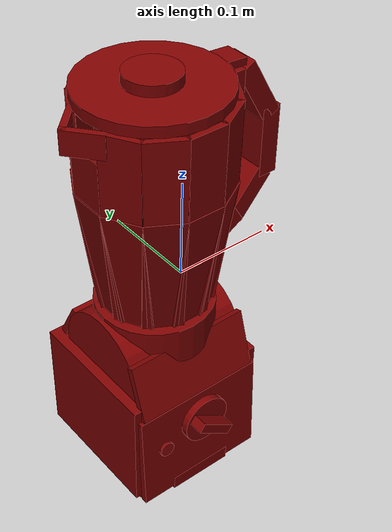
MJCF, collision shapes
<?xml version='1.0' encoding='UTF-8'?>
<mujoco model="model">
  <option timestep="0.002" gravity="0.0 0.0 -9.81"/>
  <compiler angle="radian"/>
  <asset>
    <mesh file="visuals/Blade001.obj" name="Blade001_vis"/>
    <mesh file="visuals/Body001.obj" name="Body001_vis"/>
    <mesh file="visuals/Button001.obj" name="Button001_vis"/>
    <mesh file="visuals/Jug001.obj" name="Jug001_vis"/>
    <mesh file="visuals/Jug001_Clear.obj" name="Jug001_Clear_vis"/>
    <mesh file="visuals/Konb001.obj" name="Konb001_vis"/>
    <mesh file="visuals/Lid001.obj" name="Lid001_vis"/>
    <texture file="visuals/T_BC001.png" name="Body001_material" type="2d"/>
    <material name="Body001_material" rgba="1 1 1 1.0" texture="Body001_material" shininess="0.4472135901451111" specular="0.3103448502657381"/>
    <texture file="visuals/T_BC001.png" name="Button001_material" type="2d"/>
    <material name="Button001_material" rgba="1 1 1 1.0" texture="Button001_material" shininess="0.4472135901451111" specular="0.3103448502657381"/>
    <texture file="visuals/T_BC001.png" name="Jug001_material" type="2d"/>
    <material name="Jug001_material" rgba="1 1 1 1.0" texture="Jug001_material" shininess="0.4472135901451111" specular="0.3103448502657381"/>
    <texture file="visuals/T_BC001.png" name="Blade001_material" type="2d"/>
    <material name="Blade001_material" rgba="1 1 1 1.0" texture="Blade001_material" shininess="0.4472135901451111" specular="0.3103448502657381"/>
    <texture file="visuals/T_BC001.png" name="Jug001_Clear_material" type="2d"/>
    <material name="Jug001_Clear_material" rgba="1 1 1 0.75" texture="Jug001_Clear_material" shininess="0.4472135901451111" specular="0.3103448502657381"/>
    <texture file="visuals/T_BC001.png" name="Lid001_material" type="2d"/>
    <material name="Lid001_material" rgba="1 1 1 1.0" texture="Lid001_material" shininess="0.4472135901451111" specular="0.3103448502657381"/>
    <texture file="visuals/T_BC001.png" name="Konb001_material" type="2d"/>
    <material name="Konb001_material" rgba="1 1 1 1.0" texture="Konb001_material" shininess="0.4472135901451111" specular="0.3103448502657381"/>
  </asset>
  <default>
    <default class="visual">
      <geom conaffinity="0" contype="0" group="1" type="mesh"/>
    </default>
    <default class="collision">
      <geom group="0" rgba="0.5 0 0 0.5"/>
    </default>
    <default class="spawn">
      <geom group="0" rgba="1 1 1 0.5" contype="0" conaffinity="0"/>
      <site group="0" rgba="1 1 1 0.5"/>
    </default>
    <default class="region">
      <geom group="1" conaffinity="0" contype="0" rgba="0 1 0 0"/>
    </default>
  </default>
  <worldbody>
    <body>
      <body name="object">
        <geom mesh="Body001_vis" type="mesh" solimp="0.998 0.998 0.001" solref="0.001 1" friction="0.95 0.3 0.1" class="visual" material="Body001_material"/>
        <geom class="collision" type="box" pos="-0.02370600774884224 0.01575588434934616 -0.14391756057739258" size="0.0726303681731224 0.06995470076799393 0.05990836024284363" quat="1.0 0.0 0.0 0.0" density="1000.0"/>
        <geom class="collision" type="box" pos="-0.02370600774884224 0.010671110823750496 -0.20127084851264954" size="0.03310617431998253 0.07492336630821228 0.0074357446283102036" quat="1.0 0.0 0.0 0.0" density="1000.0"/>
        <geom class="collision" type="cylinder" pos="-0.023498959839344025 0.010333314538002014 -0.0399225689470768" size="0.05790601298213005 0.02009253390133381" quat="1.0 0.0 0.0 0.0" density="1000.0"/>
        <geom class="collision" type="cylinder" pos="-0.023498957976698875 0.011205630376935005 -0.07904822379350662" size="0.05638286471366882 0.062419041991233826" quat="0.70710688829422 -4.750302551315144e-08 0.7071066498756409 4.750301130229673e-08" density="1000.0"/>
        <geom class="collision" type="cylinder" pos="-0.07721934467554092 -0.04520033672451973 -0.19629321992397308" size="0.013792860321700573 0.010646238923072815" quat="1.0 0.0 0.0 0.0" density="1000.0"/>
        <geom class="collision" type="cylinder" pos="-0.07721934467554092 0.06782449781894684 -0.19629321992397308" size="0.013792860321700573 0.010646238923072815" quat="1.0 0.0 0.0 0.0" density="1000.0"/>
        <geom class="collision" type="cylinder" pos="0.029445447027683258 -0.04520033672451973 -0.19629321992397308" size="0.013792860321700573 0.010646238923072815" quat="1.0 0.0 0.0 0.0" density="1000.0"/>
        <geom class="collision" type="cylinder" pos="0.029445447027683258 0.06782449781894684 -0.19629321992397308" size="0.013792860321700573 0.010646238923072815" quat="1.0 0.0 0.0 0.0" density="1000.0"/>
        <geom class="collision" type="cylinder" pos="-0.0794193297624588 -0.04801643639802933 -0.21001145243644714" size="0.008686801418662071 0.0032839258201420307" quat="1.0 0.0 0.0 0.0" density="1000.0"/>
        <geom class="collision" type="cylinder" pos="-0.0794193297624588 0.07029403001070023 -0.21001145243644714" size="0.008686801418662071 0.0032839258201420307" quat="1.0 0.0 0.0 0.0" density="1000.0"/>
        <geom class="collision" type="cylinder" pos="0.03260059654712677 -0.04801643639802933 -0.21001145243644714" size="0.008686801418662071 0.0032839258201420307" quat="1.0 0.0 0.0 0.0" density="1000.0"/>
        <geom class="collision" type="cylinder" pos="0.03260059654712677 0.07029403001070023 -0.21001145243644714" size="0.008686801418662071 0.0032839258201420307" quat="1.0 0.0 0.0 0.0" density="1000.0"/>
        <geom class="collision" type="box" pos="-0.02370600774884224 -0.058004483580589294 -0.15166433155536652" size="0.0682840496301651 0.0034519981127232313 0.053407784551382065" quat="7.54755831167131e-08 1.835457008603214e-09 0.9997044205665588 -0.02431136555969715" density="1000.0"/>
        <geom class="collision" type="box" pos="-0.02370600774884224 -0.04635697975754738 -0.07046926766633987" size="0.06457599997520447 0.0034519978798925877 0.02906602807343006" quat="7.45433581528232e-08 1.1967471458262935e-08 0.9873567223548889 -0.15851396322250366" density="1000.0"/>
        <geom class="collision" type="box" pos="-0.023520391434431076 0.0659138560295105 -0.06285583227872849" size="0.06164168566465378 0.0037966493982821703 0.02382502518594265" quat="0.9702504277229309 0.24210351705551147 0.0 0.0" density="1000.0"/>
        <body name="Button001">
          <joint axis="-8.449515540379638e-19 0.9961947202682495 -0.08715573698282242" pos="-0.06635891646146774 -0.06385333836078644 -0.1425868272781372" limited="true" name="Button001_joint" range="0.0 0.0015" type="slide" damping="1" frictionloss="1" armature=".01" stiffness="0.05" springref="-0.4"/>
          <geom mesh="Button001_vis" type="mesh" solimp="0.998 0.998 0.001" solref="0.001 1" friction="0.95 0.3 0.1" class="visual" material="Button001_material"/>
          <geom class="collision" type="cylinder" pos="-0.06655253469944 -0.06422373652458191 -0.14217321574687958" size="0.007525994908064604 0.0013521818909794092" quat="0.7372773885726929 0.6755901575088501 -1.6078366169891328e-16 -1.523387564496777e-16" density="1000.0"/>
        </body>
        <body name="Jug001">
          <joint axis="0.0 0.0 1.0" pos="0.0333019383251667 0.010972334071993828 0.08564426749944687" limited="true" name="Jug001_joint" range="0.0 0.1" type="slide" damping="1" frictionloss="1" armature=".01" stiffness="0.05"/>
          <geom mesh="Jug001_vis" type="mesh" solimp="0.998 0.998 0.001" solref="0.001 1" friction="0.95 0.3 0.1" class="visual" material="Jug001_material"/>
          <geom class="collision" type="cylinder" pos="-0.02371910959482193 0.011068562977015972 -0.011649996042251587" size="0.02007598802447319 0.007151107303798199" quat="1.0 0.0 0.0 0.0" density="1000.0"/>
          <geom class="collision" type="cylinder" pos="-0.02371910959482193 0.011068563908338547 0.0016762830782681704" size="0.01112541276961565 0.007151929661631584" quat="1.0 0.0 0.0 0.0" density="1000.0"/>
          <geom class="collision" type="box" pos="0.09918984770774841 0.010972322896122932 0.10551890730857849" size="0.009761814959347248 0.01324785128235817 0.03547469154000282" quat="1.0 0.0 0.0 0.0" density="1000.0"/>
          <geom class="collision" type="box" pos="0.05492480471730232 0.010972313582897186 0.17936070263385773" size="0.009761814959347248 0.01324781496077776 0.01113841775804758" quat="1.0 0.0 0.0 0.0" density="1000.0"/>
          <geom class="collision" type="box" pos="0.0828954428434372 0.010972315445542336 0.1612357199192047" size="0.009761814959347248 0.01324781496077776 0.03325482830405235" quat="0.966143786907196 2.69347604556745e-15 -0.25800421833992004 -3.4665141868117644e-08" density="1000.0"/>
          <geom class="collision" type="box" pos="0.07884078472852707 0.01097233034670353 0.054684676229953766" size="0.009761815890669823 0.01324781496077776 0.026281777769327164" quat="0.9396926164627075 -6.4034441438827906e-15 0.3420201241970062 4.59534597041511e-08" density="1000.0"/>
          <geom class="collision" type="box" pos="0.050518956035375595 0.010972334071993828 0.03077288344502449" size="0.0108710415661335 0.01324781496077776 0.018037976697087288" quat="0.8716132044792175 -1.8901147194692186e-14 0.4901942312717438 6.586184753132329e-08" density="1000.0"/>
          <geom class="collision" type="box" pos="0.03289134055376053 0.010972335934638977 0.007667149417102337" size="0.004690803121775389 0.01324781496077776 0.023297293111681938" quat="1.0 0.0 0.0 0.0" density="1000.0"/>
          <body name="Blade001">
            <joint axis="0.0 0.0 -1.0" pos="-0.023458171635866165 0.010972350835800171 0.013711430132389069" limited="false" name="Blade001_joint" range="0 360" type="hinge" damping="1" frictionloss="1" armature=".01" stiffness="0.05"/>
            <geom mesh="Blade001_vis" type="mesh" solimp="0.998 0.998 0.001" solref="0.001 1" friction="0.95 0.3 0.1" class="visual" material="Blade001_material"/>
            <geom class="collision" type="box" pos="-0.023458171635866165 0.010972345247864723 0.014321236871182919" size="0.00963058602064848 0.00569922337308526 0.0008714227005839348" quat="1.0 0.0 0.0 0.0" density="1000.0"/>
            <geom class="collision" type="box" pos="-0.0053266193717718124 0.010972345247864723 0.0070035699754953384" size="0.011695402674376965 0.0039033922366797924 0.0008714226423762739" quat="0.9396926164627075 -8.309776071456845e-15 0.342020183801651 4.595345615143742e-08" density="1000.0"/>
            <geom class="collision" type="box" pos="-0.041705138981342316 0.010972345247864723 0.0070035699754953384" size="0.011695402674376965 0.0039033922366797924 0.0008714226423762739" quat="0.9396926164627075 -7.229702337556258e-15 -0.342020183801651 -4.59534099661596e-08" density="1000.0"/>
            <geom class="collision" type="box" pos="-0.023458171635866165 0.010972345247864723 0.015489095821976662" size="0.0034575453028082848 0.0056992084719240665 0.00036451281630434096" quat="1.0 0.0 0.0 0.0" density="1000.0"/>
            <geom class="collision" type="box" pos="-0.023458171635866165 0.000928766094148159 0.02140624076128006" size="0.0034575453028082848 0.008669809438288212 0.00036451281630434096" quat="0.919166088104248 -0.39387020468711853 -8.745675399149245e-17 -5.160514655080997e-24" density="1000.0"/>
            <geom class="collision" type="box" pos="-0.023458171635866165 0.02114049345254898 0.02140624076128006" size="0.0034575453028082848 0.008669809438288212 0.00036451275809668005" quat="0.4017453193664551 -0.9157514572143555 -2.0333765729179347e-16 1.967528118198305e-23" density="1000.0"/>
          </body>
          <body name="Jug001_Clear">
            <geom class="region" name="reg_int" type="box" pos="-0.023503699339926243 0.011200858280062675 0.0871094586327672" size="0.047324723564088345 0.047235289588570595 0.10394768696278334"/>
            <geom mesh="Jug001_Clear_vis" type="mesh" solimp="0.998 0.998 0.001" solref="0.001 1" friction="0.95 0.3 0.1" class="visual" material="Jug001_Clear_material"/>
            <geom class="collision" type="box" pos="-0.081379733979702 0.010130036622285843 0.049280185252428055" size="0.0029590476769953966 0.01903216540813446 0.06470920145511627" quat="0.9974465370178223 -1.1931020221404376e-15 -0.07141713798046112 -9.595525263250693e-09" density="1000.0"/>
            <geom class="collision" type="cylinder" pos="-0.022718634456396103 0.010130046866834164 -0.015385578386485577" size="0.04932210594415665 0.0013838945887982845" quat="1.0 0.0 0.0 0.0" density="1000.0"/>
            <geom class="collision" type="box" pos="-0.09015580266714096 0.010130021721124649 0.13765649497509003" size="0.002958660013973713 0.019032161682844162 0.02560451254248619" quat="0.9999733567237854 -2.5554136985714987e-16 -0.007302739657461643 -9.811875756327026e-10" density="1000.0"/>
            <geom class="collision" type="box" pos="-0.07352063804864883 -0.019200507551431656 0.049280185252428055" size="0.002959047444164753 0.01903216540813446 0.06470920145511627" quat="0.9634593725204468 0.018484115600585938 -0.06898367404937744 0.2581581175327301" density="1000.0"/>
            <geom class="collision" type="box" pos="-0.08112091571092606 -0.023588556796312332 0.15112878382205963" size="0.0029588767793029547 0.019032159820199013 0.04057501256465912" quat="0.9659000635147095 0.0018900875002145767 -0.007053904235363007 0.25881218910217285" density="1000.0"/>
            <geom class="collision" type="box" pos="-0.0520491823554039 -0.04067195579409599 0.049280185252428055" size="0.0029590476769953966 0.01903216540813446 0.06470920145511627" quat="0.8638140559196472 0.03570856153964996 -0.06184906139969826 0.49872323870658875" density="1000.0"/>
            <geom class="collision" type="box" pos="-0.05643719807267189 -0.0482722632586956 0.15112878382205963" size="0.0029588770121335983 0.01903216354548931 0.04057501256465912" quat="0.8660022616386414 0.0036513686645776033 -0.006324354093521833 0.4999867379665375" density="1000.0"/>
            <geom class="collision" type="box" pos="-0.022718632593750954 -0.048531051725149155 0.049280185252428055" size="0.0029590476769953966 0.01903216540813446 0.06470920145511627" quat="0.7053011655807495 0.050499554723501205 -0.05049955099821091 0.7053012847900391" density="1000.0"/>
            <geom class="collision" type="box" pos="-0.022718612104654312 -0.05730711668729782 0.15112878382205963" size="0.0029588770121335983 0.019032161682844162 0.04057501256465912" quat="0.7070879340171814 0.0051638162694871426 -0.005163814406841993 0.7070879340171814" density="1000.0"/>
            <geom class="collision" type="box" pos="0.006611908320337534 -0.04067195951938629 0.049280185252428055" size="0.0029590476769953966 0.01903216540813446 0.06470920145511627" quat="0.4987233579158783 0.061849042773246765 -0.03570856153964996 0.8638139963150024" density="1000.0"/>
            <geom class="collision" type="box" pos="0.010999966412782669 -0.048272233456373215 0.15112878382205963" size="0.0029588770121335983 0.019032161682844162 0.04057501256465912" quat="0.4999866485595703 0.006324364338070154 -0.0036513707600533962 0.8660023212432861" density="1000.0"/>
            <geom class="collision" type="box" pos="0.028083357959985733 -0.01920049823820591 0.049280185252428055" size="0.0029590476769953966 0.01903216540813446 0.06470920145511627" quat="0.2581581771373749 0.06898364424705505 -0.01848411187529564 0.9634593725204468" density="1000.0"/>
            <geom class="collision" type="box" pos="0.035683661699295044 -0.023588523268699646 0.15112878382205963" size="0.0029588770121335983 0.019032161682844162 0.04057501256465912" quat="0.25881215929985046 0.007053910288959742 -0.0018900894792750478 0.9659000635147095" density="1000.0"/>
            <geom class="collision" type="box" pos="0.03594245761632919 0.010130045004189014 0.049280185252428055" size="0.0029590476769953966 0.01903216540813446 0.06470920145511627" quat="7.525567013999535e-08 0.07141713798046112 -4.701265154949397e-09 0.9974465370178223" density="1000.0"/>
            <geom class="collision" type="box" pos="0.04471852630376816 0.010130072943866253 0.15112878382205963" size="0.0029588770121335983 0.019032161682844162 0.04057501256465912" quat="7.549594016609262e-08 -0.007302730809897184 -5.585061857438234e-10 -0.9999733567237854" density="1000.0"/>
            <geom class="collision" type="box" pos="0.02808336168527603 0.039460599422454834 0.049280185252428055" size="0.0029590476769953966 0.01903216540813446 0.06470920145511627" quat="0.2581581771373749 -0.06898365169763565 -0.018484117463231087 -0.9634593725204468" density="1000.0"/>
            <geom class="collision" type="box" pos="0.035683635622262955 0.04384865611791611 0.15112878382205963" size="0.0029588770121335983 0.019032161682844162 0.04057501256465912" quat="0.25881227850914 -0.0070538888685405254 -0.0018900844734162092 -0.9659000039100647" density="1000.0"/>
            <geom class="collision" type="box" pos="0.0066118971444666386 0.06093205511569977 0.049280185252428055" size="0.0029590476769953966 0.01903216540813446 0.06470920145511627" quat="0.4987233579158783 -0.06184905394911766 -0.03570856899023056 -0.8638139963150024" density="1000.0"/>
            <geom class="collision" type="box" pos="0.010999917984008789 0.06853236258029938 0.15112878382205963" size="0.0029588770121335983 0.019032161682844162 0.04057501256465912" quat="0.4999867379665375 -0.006324357818812132 -0.003651369595900178 -0.8660022616386414" density="1000.0"/>
            <geom class="collision" type="box" pos="-0.022718647494912148 0.06879114359617233 0.049280185252428055" size="0.0029590476769953966 0.01903216540813446 0.06470920145511627" quat="0.7053011655807495 -0.05049954727292061 -0.05049953982234001 -0.7053012847900391" density="1000.0"/>
            <geom class="collision" type="box" pos="-0.02271866239607334 0.0775672122836113 0.15112878382205963" size="0.0029588770121335983 0.019032161682844162 0.04057501256465912" quat="0.7070879340171814 -0.005163815338164568 -0.005163813941180706 -0.7070879340171814" density="1000.0"/>
            <geom class="collision" type="box" pos="-0.05204921215772629 0.06093202531337738 0.049280185252428055" size="0.002959047444164753 0.01903216727077961 0.06470920145511627" quat="0.8638140559196472 -0.03570856153964996 -0.061849068850278854 -0.49872323870658875" density="1000.0"/>
            <geom class="collision" type="box" pos="-0.056437261402606964 0.0685323104262352 0.15112878382205963" size="0.0029588770121335983 0.01903216354548931 0.04057501256465912" quat="0.8660024404525757 -0.0036513670347630978 -0.006324354559183121 -0.499986469745636" density="1000.0"/>
            <geom class="collision" type="box" pos="-0.07352064549922943 0.039460569620132446 0.049280185252428055" size="0.002959047444164753 0.01903216540813446 0.06470920145511627" quat="0.9634594321250916 -0.018484100699424744 -0.06898365169763565 -0.25815802812576294" density="1000.0"/>
            <geom class="collision" type="box" pos="-0.08112095296382904 0.043848585337400436 0.15112878382205963" size="0.0029588767793029547 0.019032161682844162 0.04057501256465912" quat="0.9659001231193542 -0.0018900863360613585 -0.007053903304040432 -0.2588120102882385" density="1000.0"/>
            <geom class="collision" type="box" pos="-0.09945792704820633 -0.0003995802253484726 0.18065233528614044" size="0.002958409721031785 0.019032161682844162 0.011675574816763401" quat="0.9396675825119019 0.002497683744877577 -0.006862326990813017 0.342011034488678" density="1000.0"/>
            <geom class="collision" type="box" pos="-0.0976974368095398 0.02441496029496193 0.18065233528614044" size="0.0029584099538624287 0.019032161682844162 0.011675574816763401" quat="0.9238548874855042 -0.0027946368791162968 -0.006746850907802582 -0.3826732039451599" density="1000.0"/>
          </body>
          <body name="Lid001">
            <joint axis="0.0 0.0 1.0" pos="-0.012684758752584457 0.010972360149025917 0.19444337487220764" limited="true" name="Lid001_joint" range="0.0 0.05" type="slide" damping="1" frictionloss="1" armature=".01" stiffness="0.05"/>
            <geom mesh="Lid001_vis" type="mesh" solimp="0.998 0.998 0.001" solref="0.001 1" friction="0.95 0.3 0.1" class="visual" material="Lid001_material"/>
            <geom class="collision" type="cylinder" pos="-0.023431582376360893 0.010900856927037239 0.1984582245349884" size="0.06867838650941849 0.005201192107051611" quat="1.0 0.0 0.0 0.0" density="1000.0"/>
            <geom class="collision" type="cylinder" pos="-0.02343158610165119 0.010900854133069515 0.20879223942756653" size="0.02612263336777687 0.005131117068231106" quat="1.0 0.0 0.0 0.0" density="1000.0"/>
            <geom class="collision" type="box" pos="0.043942589312791824 0.01146834809333086 0.1981183886528015" size="0.022866295650601387 0.01229377556592226 0.003732527606189251" quat="0.9993242025375366 -1.5204171522996543e-15 0.036758556962013245 4.9388284573126384e-09" density="1000.0"/>
          </body>
        </body>
        <body name="Konb001">
          <joint axis="0.0 1.0 0.0" pos="-0.023714657872915268 -0.07196100056171417 -0.12436006218194962" limited="true" name="Konb001_joint" range="0.0 4.886921905584122" type="hinge" damping="1" frictionloss="1" armature=".01" stiffness="0.05"/>
          <geom mesh="Konb001_vis" type="mesh" solimp="0.998 0.998 0.001" solref="0.001 1" friction="0.95 0.3 0.1" class="visual" material="Konb001_material"/>
          <geom class="collision" type="cylinder" pos="-0.02371465601027012 -0.06738296896219254 -0.12436006218194962" size="0.02472747676074505 0.0035679927095770836" quat="0.7071068286895752 0.7071067690849304 -1.63459346135061e-16 2.2978035169151292e-17" density="1000.0"/>
          <geom class="collision" type="box" pos="-0.02371465601027012 -0.07684306800365448 -0.12436006218194962" size="0.005093937739729881 0.008838259615004063 0.021076012402772903" quat="0.8870107531547546 -1.209224574313418e-14 -0.46174874901771545 -6.204002289678101e-08" density="1000.0"/>
        </body>
        <geom class="region" name="reg_main" type="box" pos="-0.02172207646071911 0.010653667151927948 0.0" size="0.08936356008052826 0.0755433738231659 0.21334168314933777"/>
      </body>
    </body>
  </worldbody>
  <actuator>
    <motor name="Button001_joint_actuator" joint="Button001_joint" gear="0.1"/>
    <motor name="Jug001_joint_actuator" joint="Jug001_joint" gear="25"/>
    <motor name="Konb001_joint_actuator" joint="Konb001_joint" gear="15"/>
    <motor name="Blade001_joint_actuator" joint="Blade001_joint" gear="15"/>
    <motor name="Lid001_joint_actuator" joint="Lid001_joint" gear="15"/>
  </actuator>
</mujoco>
